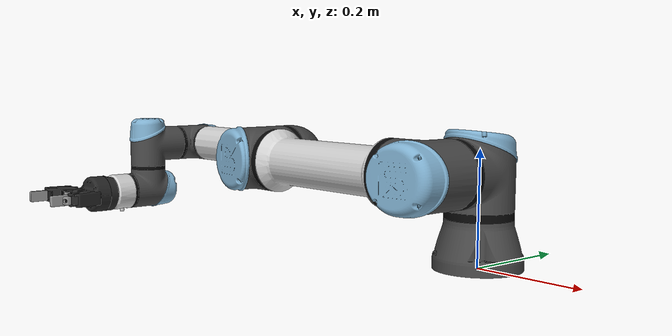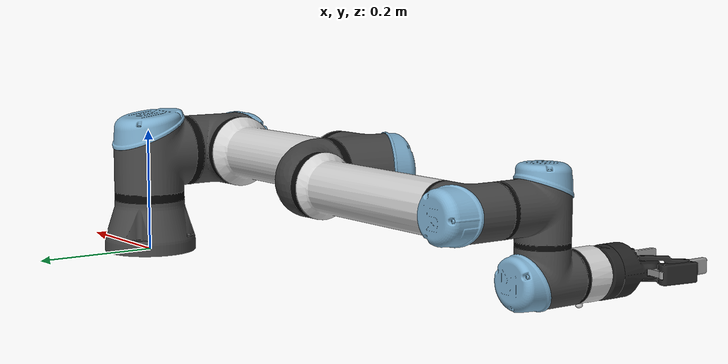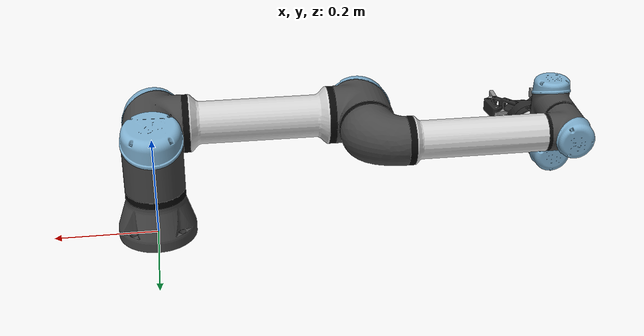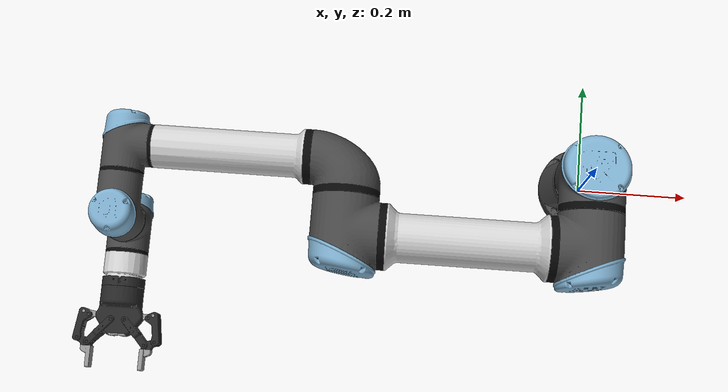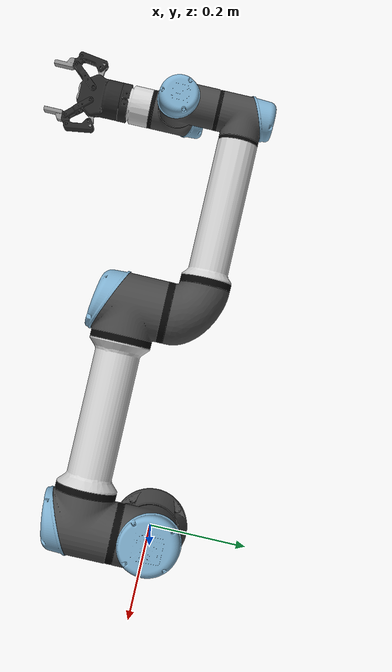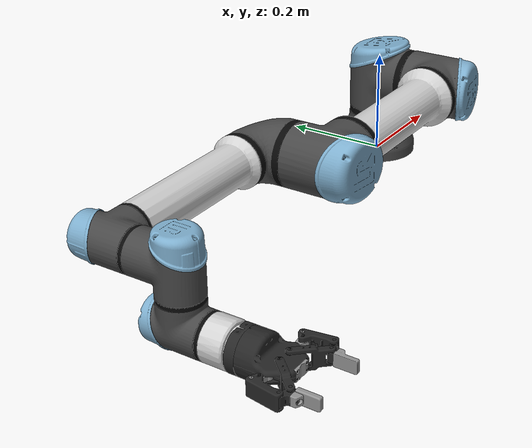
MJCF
<mujoco model="ur5e">
  <compiler angle="radian" meshdir="/Users/jerry/code/hmi-manipulation-demo/assets/mujoco_menagerie/universal_robots_ur5e/assets/"/>

  <option integrator="implicitfast"/>

  <size nkey="2"/>

  <default>
    <default class="ur5e">
      <material shininess="0.25"/>
      <joint range="-6.28319 6.28319" armature="0.1"/>
      <site size="0.001 0.005 0.005" group="4" rgba="0.5 0.5 0.5 0.3"/>
      <general ctrlrange="-6.2831 6.2831" forcerange="-150 150" biastype="affine" gainprm="2000" biasprm="0 -2000 -400"/>
      <default class="size3">
        <default class="size3_limited">
          <joint range="-3.1415 3.1415"/>
          <general ctrlrange="-3.1415 3.1415"/>
        </default>
      </default>
      <default class="size1">
        <general forcerange="-28 28" gainprm="500" biasprm="0 -500 -100"/>
      </default>
      <default class="visual">
        <geom type="mesh" contype="0" conaffinity="0" group="2"/>
      </default>
      <default class="collision">
        <geom type="capsule" group="3"/>
        <default class="eef_collision">
          <geom type="cylinder"/>
        </default>
      </default>
    </default>
    <default class="gripper_main">
      <default class="gripper_2f85">
        <mesh scale="0.001 0.001 0.001"/>
        <general biastype="affine"/>
        <default class="gripper_driver">
          <joint solreflimit="0.005" solimplimit="0.95 0.99" range="0 0.9" armature="0.005" damping="0.1"/>
        </default>
        <default class="gripper_follower">
          <joint solreflimit="0.005" solimplimit="0.95 0.99" range="-0.872664 0.9" armature="0.001"/>
        </default>
        <default class="gripper_spring_link">
          <joint springref="2.62" stiffness="0.05" range="-0.296706 0.9" armature="0.001" damping="0.00125"/>
        </default>
        <default class="gripper_coupler">
          <joint solreflimit="0.005" solimplimit="0.95 0.99" range="-1.57 0" armature="0.001"/>
        </default>
        <default class="gripper_visual">
          <geom type="mesh" contype="0" conaffinity="0" group="2" material="black"/>
        </default>
        <default class="gripper_collision">
          <geom type="mesh" group="3"/>
          <default class="gripper_pad_box1">
            <geom size="0.002 0.011 0.009375" type="box" priority="1" friction="0.7" solref="0.004" solimp="0.95 0.99" rgba="0.55 0.55 0.55 1"/>
          </default>
          <default class="gripper_pad_box2">
            <geom size="0.002 0.011 0.009375" type="box" priority="1" friction="0.6" solref="0.004" solimp="0.95 0.99" rgba="0.45 0.45 0.45 1"/>
          </default>
        </default>
      </default>
    </default>
  </default>

  <asset>
    <material name="black" class="ur5e" rgba="0.033 0.033 0.033 1"/>
    <material name="jointgray" class="ur5e" rgba="0.278 0.278 0.278 1"/>
    <material name="linkgray" class="ur5e" rgba="0.82 0.82 0.82 1"/>
    <material name="urblue" class="ur5e" rgba="0.49 0.678 0.8 1"/>
    <material name="gripper_metal" rgba="0.58 0.58 0.58 1"/>
    <material name="gripper_silicone" rgba="0.1882 0.1882 0.1882 1"/>
    <material name="gripper_black" rgba="0.149 0.149 0.149 1"/>
    <mesh name="base_0" file="base_0.obj"/>
    <mesh name="base_1" file="base_1.obj"/>
    <mesh name="shoulder_0" file="shoulder_0.obj"/>
    <mesh name="shoulder_1" file="shoulder_1.obj"/>
    <mesh name="shoulder_2" file="shoulder_2.obj"/>
    <mesh name="upperarm_0" file="upperarm_0.obj"/>
    <mesh name="upperarm_1" file="upperarm_1.obj"/>
    <mesh name="upperarm_2" file="upperarm_2.obj"/>
    <mesh name="upperarm_3" file="upperarm_3.obj"/>
    <mesh name="forearm_0" file="forearm_0.obj"/>
    <mesh name="forearm_1" file="forearm_1.obj"/>
    <mesh name="forearm_2" file="forearm_2.obj"/>
    <mesh name="forearm_3" file="forearm_3.obj"/>
    <mesh name="wrist1_0" file="wrist1_0.obj"/>
    <mesh name="wrist1_1" file="wrist1_1.obj"/>
    <mesh name="wrist1_2" file="wrist1_2.obj"/>
    <mesh name="wrist2_0" file="wrist2_0.obj"/>
    <mesh name="wrist2_1" file="wrist2_1.obj"/>
    <mesh name="wrist2_2" file="wrist2_2.obj"/>
    <mesh name="wrist3" file="wrist3.obj"/>
    <mesh name="gripper_base" file="/Users/jerry/code/hmi-manipulation-demo/assets/mujoco_menagerie/robotiq_2f85_v4/assets/base.stl"/>
    <mesh name="gripper_base_coupling" file="/Users/jerry/code/hmi-manipulation-demo/assets/mujoco_menagerie/robotiq_2f85_v4/assets/base_coupling.stl"/>
    <mesh name="gripper_c-a01-85-open" file="/Users/jerry/code/hmi-manipulation-demo/assets/mujoco_menagerie/robotiq_2f85_v4/assets/c-a01-85-open.stl"/>
    <mesh name="gripper_driver" file="/Users/jerry/code/hmi-manipulation-demo/assets/mujoco_menagerie/robotiq_2f85_v4/assets/driver.stl"/>
    <mesh name="gripper_coupler" file="/Users/jerry/code/hmi-manipulation-demo/assets/mujoco_menagerie/robotiq_2f85_v4/assets/coupler.stl"/>
    <mesh name="gripper_spring_link" file="/Users/jerry/code/hmi-manipulation-demo/assets/mujoco_menagerie/robotiq_2f85_v4/assets/spring_link.stl"/>
    <mesh name="gripper_follower" file="/Users/jerry/code/hmi-manipulation-demo/assets/mujoco_menagerie/robotiq_2f85_v4/assets/follower.stl"/>
    <mesh name="gripper_tongue" file="/Users/jerry/code/hmi-manipulation-demo/assets/mujoco_menagerie/robotiq_2f85_v4/assets/tongue.stl"/>
  </asset>

  <worldbody>
    <light name="spotlight" target="wrist_2_link" pos="0 -1 2" dir="0 0 -1" mode="targetbodycom"/>
    <body name="base" childclass="ur5e" quat="0 0 0 -1">
      <inertial pos="0 0 0" mass="4" diaginertia="0.00443333 0.00443333 0.0072"/>
      <geom class="visual" material="black" mesh="base_0"/>
      <geom class="visual" material="jointgray" mesh="base_1"/>
      <body name="shoulder_link" pos="0 0 0.163">
        <inertial pos="0 0 0" mass="3.7" diaginertia="0.0102675 0.0102675 0.00666"/>
        <joint name="shoulder_pan_joint" class="size3" pos="0 0 0" axis="0 0 1"/>
        <geom class="visual" material="urblue" mesh="shoulder_0"/>
        <geom class="visual" material="black" mesh="shoulder_1"/>
        <geom class="visual" material="jointgray" mesh="shoulder_2"/>
        <geom class="collision" size="0.06 0.06" pos="0 0 -0.04"/>
        <body name="upper_arm_link" pos="0 0.138 0" quat="0.707107 0 0.707107 0">
          <inertial pos="0 0 0.2125" mass="8.393" diaginertia="0.133886 0.133886 0.0151074"/>
          <joint name="shoulder_lift_joint" class="size3" pos="0 0 0" axis="0 1 0"/>
          <geom class="visual" material="linkgray" mesh="upperarm_0"/>
          <geom class="visual" material="black" mesh="upperarm_1"/>
          <geom class="visual" material="jointgray" mesh="upperarm_2"/>
          <geom class="visual" material="urblue" mesh="upperarm_3"/>
          <geom class="collision" size="0.06 0.06" pos="0 -0.04 0" quat="0.707107 0.707107 0 0"/>
          <geom class="collision" size="0.05 0.2" pos="0 0 0.2"/>
          <body name="forearm_link" pos="0 -0.131 0.425">
            <inertial pos="0 0 0.196" mass="2.275" diaginertia="0.0311796 0.0311796 0.004095"/>
            <joint name="elbow_joint" class="size3_limited" pos="0 0 0" axis="0 1 0"/>
            <geom class="visual" material="urblue" mesh="forearm_0"/>
            <geom class="visual" material="linkgray" mesh="forearm_1"/>
            <geom class="visual" material="black" mesh="forearm_2"/>
            <geom class="visual" material="jointgray" mesh="forearm_3"/>
            <geom class="collision" size="0.055 0.06" pos="0 0.08 0" quat="0.707107 0.707107 0 0"/>
            <geom class="collision" size="0.038 0.19" pos="0 0 0.2"/>
            <body name="wrist_1_link" pos="0 0 0.392" quat="0.707107 0 0.707107 0">
              <inertial pos="0 0.127 0" mass="1.219" diaginertia="0.0025599 0.0025599 0.0021942"/>
              <joint name="wrist_1_joint" class="size1" pos="0 0 0" axis="0 1 0"/>
              <geom class="visual" material="black" mesh="wrist1_0"/>
              <geom class="visual" material="urblue" mesh="wrist1_1"/>
              <geom class="visual" material="jointgray" mesh="wrist1_2"/>
              <geom class="collision" size="0.04 0.07" pos="0 0.05 0" quat="0.707107 0.707107 0 0"/>
              <body name="wrist_2_link" pos="0 0.127 0">
                <inertial pos="0 0 0.1" mass="1.219" diaginertia="0.0025599 0.0025599 0.0021942"/>
                <joint name="wrist_2_joint" class="size1" pos="0 0 0" axis="0 0 1"/>
                <geom class="visual" material="black" mesh="wrist2_0"/>
                <geom class="visual" material="urblue" mesh="wrist2_1"/>
                <geom class="visual" material="jointgray" mesh="wrist2_2"/>
                <geom class="collision" size="0.04 0.06" pos="0 0 0.04"/>
                <geom class="collision" size="0.04 0.04" pos="0 0.02 0.1" quat="0.707107 0.707107 0 0"/>
                <body name="wrist_3_link" pos="0 0 0.1">
                  <inertial pos="0 0.0771683 0" quat="0.707107 0 0 0.707107" mass="0.1889" diaginertia="0.000132134 9.90863e-05 9.90863e-05"/>
                  <joint name="wrist_3_joint" class="size1" pos="0 0 0" axis="0 1 0"/>
                  <geom class="visual" material="linkgray" mesh="wrist3"/>
                  <geom class="eef_collision" size="0.04 0.02" pos="0 0.08 0" quat="0.707107 0.707107 0 0"/>
                  <site name="attachment_site" pos="0 0.1 0" quat="-0.707107 0.707107 0 0"/>
                  <body name="gripper_base" childclass="gripper_2f85" pos="0 0.1 0" quat="-0.707107 0.707107 0 0">
                    <inertial pos="7.77116e-05 8.42713e-05 0.0311656" quat="0.704758 -0.00373684 -0.00570287 0.709415" mass="0.777441" diaginertia="0.000260285 0.000225381 0.000152708"/>
                    <geom class="gripper_visual" pos="0 0 0.0108" quat="0 0 0 1" material="gripper_black" mesh="gripper_base"/>
                    <geom class="gripper_visual" pos="0 0 0.004" quat="0.707107 -0.707107 0 0" material="gripper_black" mesh="gripper_base_coupling"/>
                    <geom class="gripper_visual" pos="0 0 0.0108" quat="1 0 0 0" material="gripper_metal" mesh="gripper_c-a01-85-open"/>
                    <geom class="gripper_collision" pos="0 0 0.0108" quat="0 0 0 1" mesh="gripper_base"/>
                    <body name="gripper_left_driver" pos="-0.0306011 0.00475 0.0657045" quat="0.707107 -0.707107 0 0">
                      <inertial pos="-0.0175297 0.00165308 -0.00469625" quat="-0.469642 0.469642 -0.528617 0.528617" mass="0.00899563" diaginertia="1.72352e-06 1.60906e-06 3.22006e-07"/>
                      <joint name="gripper_left_driver_joint" class="gripper_driver" pos="0 0 0" axis="0 0 1"/>
                      <geom class="gripper_visual" pos="0.0306011 0.0549045 -0.0047" quat="0.707107 0.707107 0 0" material="gripper_metal" mesh="gripper_driver"/>
                      <geom class="gripper_collision" pos="0.0306011 0.0549045 -0.0047" quat="0.707107 0.707107 0 0" mesh="gripper_driver"/>
                      <body name="gripper_left_coupler" pos="-0.0314249 0.00453223 -0.0102" quat="0 0 0 1">
                        <inertial pos="0.00367747 0.01986 0.0055" quat="0.701447 -0.701447 0.0892884 -0.0892884" mass="0.0140974" diaginertia="4.16206e-06 3.52216e-06 8.88131e-07"/>
                        <geom class="gripper_visual" pos="-0.062026 -0.0503723 0.0055" quat="0.707107 -0.707107 0 0" material="gripper_black" mesh="gripper_coupler"/>
                        <geom class="gripper_collision" pos="-0.062026 -0.0503723 0.0055" quat="0.707107 -0.707107 0 0" mesh="gripper_coupler"/>
                      </body>
                    </body>
                    <body name="gripper_left_spring_link" pos="-0.0127 -0.012 0.07222" quat="0.707107 -0.707107 0 0">
                      <inertial pos="-0.0183 -0.0205732 0.01205" quat="0.660942 0.660942 -0.251309 -0.251309" mass="0.0221642" diaginertia="8.96853e-06 6.71733e-06 2.63931e-06"/>
                      <joint name="gripper_left_spring_link_joint" class="gripper_spring_link" pos="0 0 0" axis="0 0 1" springref="2.62"/>
                      <geom class="gripper_visual" pos="0.0127 0.06142 0.01205" quat="0.707107 0.707107 0 0" material="gripper_black" mesh="gripper_spring_link"/>
                      <geom class="gripper_collision" pos="0.0127 0.06142 0.01205" quat="0.707107 0.707107 0 0" mesh="gripper_spring_link"/>
                      <body name="gripper_left_follower" pos="-0.0382079 -0.0425003 0.00295" quat="0 -1 -1.90231e-05 0">
                        <inertial pos="-0.00852976 -0.0014822 -0.00910001" quat="0.359439 0.359439 0.608937 0.608937" mass="0.0125222" diaginertia="2.67415e-06 2.4559e-06 6.02031e-07"/>
                        <joint name="gripper_left_follower" class="gripper_follower" pos="0 0 0" axis="0 0 1"/>
                        <geom class="gripper_visual" pos="0.0509079 -0.10392 -0.0091" quat="0.707107 -0.707107 0 0" material="gripper_black" mesh="gripper_follower"/>
                        <geom class="gripper_visual" pos="0.0509079 -0.10392 -0.0091" quat="0.707107 -0.707107 0 0" material="gripper_metal" mesh="gripper_tongue"/>
                        <geom class="gripper_collision" pos="0.0509079 -0.10392 -0.0091" quat="0.707107 -0.707107 0 0" mesh="gripper_follower"/>
                        <geom class="gripper_collision" pos="0.0509079 -0.10392 -0.0091" quat="0.707107 -0.707107 0 0" mesh="gripper_tongue"/>
                        <body name="gripper_left_pad" pos="-0.0377897 -0.103916 -0.0091" quat="0.707107 -0.707107 0 0">
                          <geom name="gripper_left_pad1" class="gripper_pad_box1" pos="0.043258 0 0.12" mass="0.00175"/>
                          <geom name="gripper_left_pad2" class="gripper_pad_box2" pos="0.043258 0 0.13875" mass="0.00175"/>
                        </body>
                      </body>
                    </body>
                    <body name="gripper_right_driver" pos="0.0306011 -0.00475 0.0657045" quat="0 0 -0.707107 0.707107">
                      <inertial pos="-0.0175297 0.00165308 -0.00469625" quat="-0.469642 0.469642 -0.528617 0.528617" mass="0.00899563" diaginertia="1.72352e-06 1.60906e-06 3.22006e-07"/>
                      <joint name="gripper_right_driver_joint" class="gripper_driver" pos="0 0 0" axis="0 0 1"/>
                      <geom class="gripper_visual" pos="0.0306011 0.0549045 -0.0047" quat="0.707107 0.707107 0 0" material="gripper_metal" mesh="gripper_driver"/>
                      <geom class="gripper_collision" pos="0.0306011 0.0549045 -0.0047" quat="0.707107 0.707107 0 0" mesh="gripper_driver"/>
                      <body name="gripper_right_coupler" pos="-0.0314249 0.00453223 -0.0102" quat="0 0 0 1">
                        <inertial pos="0.00367747 0.01986 0.0055" quat="0.701447 -0.701447 0.0892884 -0.0892884" mass="0.0140974" diaginertia="4.16206e-06 3.52216e-06 8.88131e-07"/>
                        <geom class="gripper_visual" pos="-0.062026 -0.0503723 0.0055" quat="0.707107 -0.707107 0 0" material="gripper_black" mesh="gripper_coupler"/>
                        <geom class="gripper_collision" pos="-0.062026 -0.0503723 0.0055" quat="0.707107 -0.707107 0 0" mesh="gripper_coupler"/>
                      </body>
                    </body>
                    <body name="gripper_right_spring_link" pos="0.0127 0.012 0.07222" quat="0 0 -0.707107 0.707107">
                      <inertial pos="-0.0183 -0.0205732 0.01205" quat="0.660942 0.660942 -0.251309 -0.251309" mass="0.0221642" diaginertia="8.96853e-06 6.71733e-06 2.63931e-06"/>
                      <joint name="gripper_right_spring_link_joint" class="gripper_spring_link" pos="0 0 0" axis="0 0 1" springref="2.62"/>
                      <geom class="gripper_visual" pos="0.0127 0.06142 0.01205" quat="0.707107 0.707107 0 0" material="gripper_black" mesh="gripper_spring_link"/>
                      <geom class="gripper_collision" pos="0.0127 0.06142 0.01205" quat="0.707107 0.707107 0 0" mesh="gripper_spring_link"/>
                      <body name="gripper_right_follower" pos="-0.0382079 -0.0425003 0.00295" quat="0 -1 0 0">
                        <inertial pos="-0.00852976 -0.0014822 -0.00910001" quat="0.359439 0.359439 0.608937 0.608937" mass="0.0125222" diaginertia="2.67415e-06 2.4559e-06 6.02031e-07"/>
                        <joint name="gripper_right_follower_joint" class="gripper_follower" pos="0 0 0" axis="0 0 1"/>
                        <geom class="gripper_visual" pos="0.0509079 -0.10392 -0.0091" quat="0.707107 -0.707107 0 0" material="gripper_metal" mesh="gripper_tongue"/>
                        <geom class="gripper_visual" pos="0.0509079 -0.10392 -0.0091" quat="0.707107 -0.707107 0 0" material="gripper_black" mesh="gripper_follower"/>
                        <geom class="gripper_collision" pos="0.0509079 -0.10392 -0.0091" quat="0.707107 -0.707107 0 0" mesh="gripper_tongue"/>
                        <geom class="gripper_collision" pos="0.0509079 -0.10392 -0.0091" quat="0.707107 -0.707107 0 0" mesh="gripper_follower"/>
                        <body name="gripper_right_pad" pos="-0.0377897 -0.103916 -0.0091" quat="0.707107 -0.707107 0 0">
                          <geom name="gripper_right_pad1" class="gripper_pad_box1" pos="0.043258 0 0.12" mass="0.00175"/>
                          <geom name="gripper_right_pad2" class="gripper_pad_box2" pos="0.043258 0 0.13875" mass="0.00175"/>
                        </body>
                      </body>
                    </body>
                  </body>
                </body>
              </body>
            </body>
          </body>
        </body>
      </body>
    </body>
  </worldbody>

  <contact>
    <exclude body1="gripper_base" body2="gripper_left_driver"/>
    <exclude body1="gripper_base" body2="gripper_left_spring_link"/>
    <exclude body1="gripper_base" body2="gripper_right_driver"/>
    <exclude body1="gripper_base" body2="gripper_right_spring_link"/>
    <exclude body1="gripper_left_coupler" body2="gripper_left_follower"/>
    <exclude body1="gripper_right_coupler" body2="gripper_right_follower"/>
  </contact>

  <equality>
    <connect body1="gripper_right_follower" body2="gripper_right_coupler" anchor="-0.0179014 -0.00651468 0.0044" solref="0.005" solimp="0.95 0.99"/>
    <connect body1="gripper_left_follower" body2="gripper_left_coupler" anchor="-0.0179014 -0.00651468 0.0044" solref="0.005" solimp="0.95 0.99"/>
    <joint joint1="gripper_right_driver_joint" joint2="gripper_left_driver_joint" polycoef="0 1 0 0 0" solref="0.005" solimp="0.95 0.99"/>
  </equality>

  <tendon>
    <fixed name="gripper_split">
      <joint joint="gripper_right_driver_joint" coef="0.485"/>
      <joint joint="gripper_left_driver_joint" coef="0.485"/>
    </fixed>
  </tendon>

  <actuator>
    <general name="shoulder_pan" class="size3" joint="shoulder_pan_joint"/>
    <general name="shoulder_lift" class="size3" joint="shoulder_lift_joint"/>
    <general name="elbow" class="size3_limited" joint="elbow_joint"/>
    <general name="wrist_1" class="size1" joint="wrist_1_joint"/>
    <general name="wrist_2" class="size1" joint="wrist_2_joint"/>
    <general name="wrist_3" class="size1" joint="wrist_3_joint"/>
    <general name="gripper_fingers_actuator" class="gripper_2f85" tendon="gripper_split" ctrlrange="0 255" forcerange="-5 5" gainprm="0.313725" biasprm="0 -100 -10"/>
  </actuator>

  <keyframe>
    <key name="home" qpos="-1.5708 -1.5708 1.5708 -1.5708 -1.5708 0 0 0 0 0 0 0" ctrl="-1.5708 -1.5708 1.5708 -1.5708 -1.5708 0 0"/>
    <key name="unload" qpos="0 -1.5708 1.5708 -1.5708 0 0 0 0 0 0 0 0" ctrl="0 -1.5708 1.5708 -1.5708 0 0 0"/>
  </keyframe>
</mujoco>
